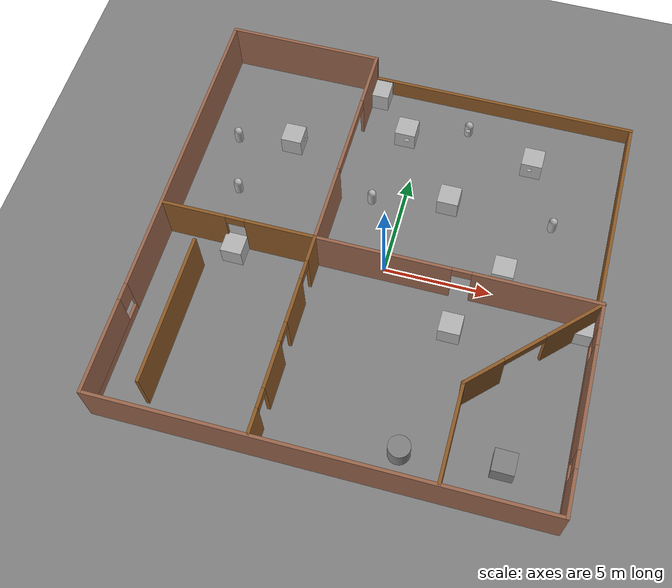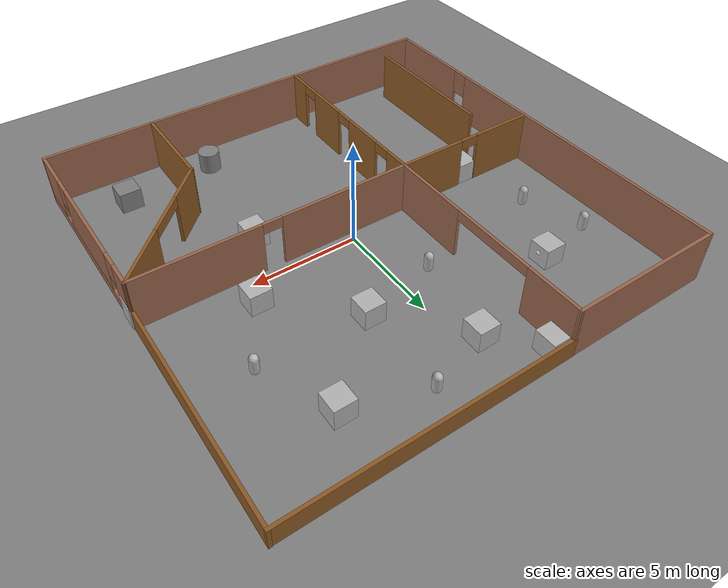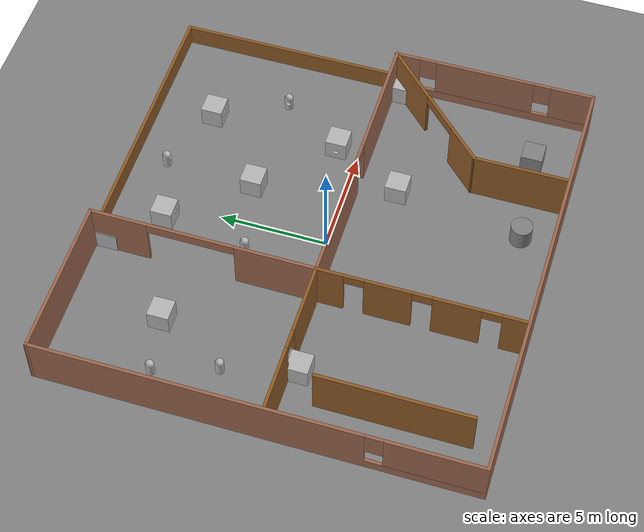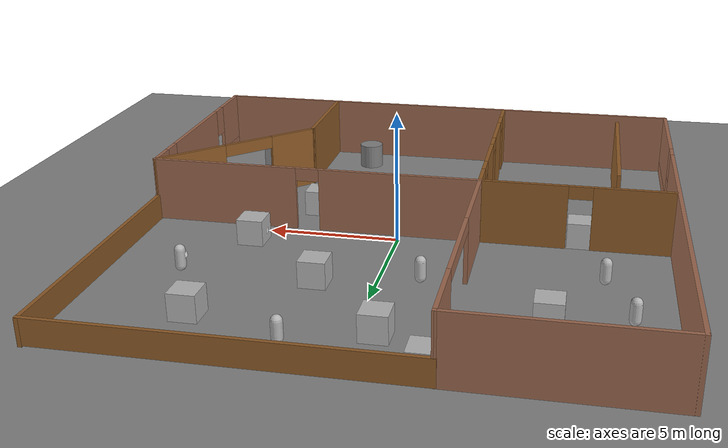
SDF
<sdf version="1.9">
 <world name="default">
  <gravity>0 0 -9.8</gravity>
  <magnetic_field>6e-06 2.3e-05 -4.2e-05</magnetic_field>
  <atmosphere type="adiabatic"/>
  <physics type="ode">
   <max_step_size>0.001</max_step_size>
   <real_time_factor>1</real_time_factor>
   <real_time_update_rate>1000</real_time_update_rate>
  </physics>
  <scene><ambient>0.4 0.4 0.4 1</ambient><background>0.7 0.7 0.7 1</background><shadows>true</shadows></scene>
  <audio><device>default</device></audio>
  <spherical_coordinates>
   <surface_model>EARTH_WGS84</surface_model>
   <latitude_deg>0</latitude_deg>
   <longitude_deg>0</longitude_deg>
   <elevation>0</elevation>
   <heading_deg>0</heading_deg>
  </spherical_coordinates>
  <model name="ground_plane">
   <static>true</static>
   <link name="link">
    <collision name="collision">
     <geometry><plane><normal>0 0 1</normal><size>100 100</size></plane></geometry>
     <surface><friction><ode><mu>100</mu><mu2>50</mu2></ode></friction></surface>
    </collision>
    <visual name="visual">
     <cast_shadows>false</cast_shadows>
     <geometry><plane><normal>0 0 1</normal><size>100 100</size></plane></geometry>
     <material>
      <ambient>0.5 0.5 0.5 1</ambient>
      <diffuse>0.5 0.5 0.5 1</diffuse>
      <specular>0.1 0.1 0.1 1</specular>
     </material>
    </visual>
    <inertial>
     <mass>1</mass>
     <inertia><ixx>1</ixx><ixy>0</ixy><ixz>0</ixz><iyy>1</iyy><iyz>0</iyz><izz>1</izz></inertia>
    </inertial>
   </link>
  </model>
  <model name="test_room">
   <pose>-0.185701 0.02346 0 0 -0 0</pose>
   <link name="Wall_1">
    <pose>-10.0852 -7e-06 0 0 0 -1.5708</pose>
    <visual name="Wall_1_Visual_0">
     <pose>-2.60084 0 1.25 0 -0 0</pose>
     <geometry><box><size>14.8266 0.15 2.5</size></box></geometry>
     <material>
      <ambient>0.6 0.4 0.3 1</ambient>
      <diffuse>0.6 0.4 0.3 1</diffuse>
      <specular>0.1 0.1 0.1 1</specular>
     </material>
     <meta><layer>0</layer></meta>
    </visual>
    <collision name="Wall_1_Collision_0">
     <geometry><box><size>14.8266 0.15 2.5</size></box></geometry>
     <pose>-2.60084 0 1.25 0 -0 0</pose>
    </collision>
    <visual name="Wall_1_Visual_1">
     <pose>7.41331 0 0.25 0 -0 0</pose>
     <geometry><box><size>5.20167 0.15 0.5</size></box></geometry>
     <material>
      <ambient>0.6 0.4 0.3 1</ambient>
      <diffuse>0.6 0.4 0.3 1</diffuse>
      <specular>0.1 0.1 0.1 1</specular>
     </material>
     <meta><layer>0</layer></meta>
    </visual>
    <collision name="Wall_1_Collision_1">
     <geometry><box><size>5.20167 0.15 0.5</size></box></geometry>
     <pose>7.41331 0 0.25 0 -0 0</pose>
    </collision>
    <visual name="Wall_1_Visual_2">
     <pose>7.81331 0 1.5 0 -0 0</pose>
     <geometry><box><size>4.40167 0.15 2</size></box></geometry>
     <material>
      <ambient>0.6 0.4 0.3 1</ambient>
      <diffuse>0.6 0.4 0.3 1</diffuse>
      <specular>0.1 0.1 0.1 1</specular>
     </material>
     <meta><layer>0</layer></meta>
    </visual>
    <collision name="Wall_1_Collision_2">
     <geometry><box><size>4.40167 0.15 2</size></box></geometry>
     <pose>7.81331 0 1.5 0 -0 0</pose>
    </collision>
    <visual name="Wall_1_Visual_3">
     <pose>5.21248 0 1.9 0 -0 0</pose>
     <geometry><box><size>0.8 0.15 1.2</size></box></geometry>
     <material>
      <ambient>0.6 0.4 0.3 1</ambient>
      <diffuse>0.6 0.4 0.3 1</diffuse>
      <specular>0.1 0.1 0.1 1</specular>
     </material>
     <meta><layer>0</layer></meta>
    </visual>
    <collision name="Wall_1_Collision_3">
     <geometry><box><size>0.8 0.15 1.2</size></box></geometry>
     <pose>5.21248 0 1.9 0 -0 0</pose>
    </collision>
    <inertial>
     <mass>1</mass>
     <inertia><ixx>1</ixx><ixy>0</ixy><ixz>0</ixz><iyy>1</iyy><iyz>0</iyz><izz>1</izz></inertia>
    </inertial>
   </link>
   <link name="Wall_10">
    <pose>10.0526 -5.21899 0 0 0 -1.56433</pose>
    <visual name="Wall_10_Visual_0">
     <pose>-4.1681 0 1.25 0 -0 0</pose>
     <geometry><box><size>1.23337 0.15 2.5</size></box></geometry>
     <material>
      <ambient>0.6 0.4 0.3 1</ambient>
      <diffuse>0.6 0.4 0.3 1</diffuse>
      <specular>0.1 0.1 0.1 1</specular>
     </material>
     <meta><layer>0</layer></meta>
    </visual>
    <collision name="Wall_10_Collision_0">
     <geometry><box><size>1.23337 0.15 2.5</size></box></geometry>
     <pose>-4.1681 0 1.25 0 -0 0</pose>
    </collision>
    <visual name="Wall_10_Visual_1">
     <pose>0.616686 0 0.25 0 -0 0</pose>
     <geometry><box><size>8.3362 0.15 0.5</size></box></geometry>
     <material>
      <ambient>0.6 0.4 0.3 1</ambient>
      <diffuse>0.6 0.4 0.3 1</diffuse>
      <specular>0.1 0.1 0.1 1</specular>
     </material>
     <meta><layer>0</layer></meta>
    </visual>
    <collision name="Wall_10_Collision_1">
     <geometry><box><size>8.3362 0.15 0.5</size></box></geometry>
     <pose>0.616686 0 0.25 0 -0 0</pose>
    </collision>
    <visual name="Wall_10_Visual_2">
     <pose>-0.410197 0 1.5 0 -0 0</pose>
     <geometry><box><size>4.68244 0.15 2</size></box></geometry>
     <material>
      <ambient>0.6 0.4 0.3 1</ambient>
      <diffuse>0.6 0.4 0.3 1</diffuse>
      <specular>0.1 0.1 0.1 1</specular>
     </material>
     <meta><layer>0</layer></meta>
    </visual>
    <collision name="Wall_10_Collision_2">
     <geometry><box><size>4.68244 0.15 2</size></box></geometry>
     <pose>-0.410197 0 1.5 0 -0 0</pose>
    </collision>
    <visual name="Wall_10_Visual_3">
     <pose>3.75791 0 1.5 0 -0 0</pose>
     <geometry><box><size>2.05376 0.15 2</size></box></geometry>
     <material>
      <ambient>0.6 0.4 0.3 1</ambient>
      <diffuse>0.6 0.4 0.3 1</diffuse>
      <specular>0.1 0.1 0.1 1</specular>
     </material>
     <meta><layer>0</layer></meta>
    </visual>
    <collision name="Wall_10_Collision_3">
     <geometry><box><size>2.05376 0.15 2</size></box></geometry>
     <pose>3.75791 0 1.5 0 -0 0</pose>
    </collision>
    <visual name="Wall_10_Visual_4">
     <pose>-3.15142 0 1.9 0 -0 0</pose>
     <geometry><box><size>0.8 0.15 1.2</size></box></geometry>
     <material>
      <ambient>0.6 0.4 0.3 1</ambient>
      <diffuse>0.6 0.4 0.3 1</diffuse>
      <specular>0.1 0.1 0.1 1</specular>
     </material>
     <meta><layer>0</layer></meta>
    </visual>
    <collision name="Wall_10_Collision_4">
     <geometry><box><size>0.8 0.15 1.2</size></box></geometry>
     <pose>-3.15142 0 1.9 0 -0 0</pose>
    </collision>
    <visual name="Wall_10_Visual_5">
     <pose>2.33102 0 1.9 0 -0 0</pose>
     <geometry><box><size>0.8 0.15 1.2</size></box></geometry>
     <material>
      <ambient>0.6 0.4 0.3 1</ambient>
      <diffuse>0.6 0.4 0.3 1</diffuse>
      <specular>0.1 0.1 0.1 1</specular>
     </material>
     <meta><layer>0</layer></meta>
    </visual>
    <collision name="Wall_10_Collision_5">
     <geometry><box><size>0.8 0.15 1.2</size></box></geometry>
     <pose>2.33102 0 1.9 0 -0 0</pose>
    </collision>
    <inertial>
     <mass>1</mass>
     <inertia><ixx>1</ixx><ixy>0</ixy><ixz>0</ixz><iyy>1</iyy><iyz>0</iyz><izz>1</izz></inertia>
    </inertial>
   </link>
   <link name="Wall_12">
    <collision name="Wall_12_Collision">
     <geometry><box><size>7.41264 0.15 2.5</size></box></geometry>
     <pose>0 0 1.25 0 -0 0</pose>
    </collision>
    <visual name="Wall_12_Visual">
     <pose>0 0 1.25 0 -0 0</pose>
     <geometry><box><size>7.41264 0.15 2.5</size></box></geometry>
     <material>
      <ambient>0.6 0.4 0.3 1</ambient>
      <diffuse>0.6 0.4 0.3 1</diffuse>
      <specular>0.1 0.1 0.1 1</specular>
     </material>
     <meta><layer>0</layer></meta>
    </visual>
    <pose>-6.45385 9.93841 0 0 0 -0.000203</pose>
    <inertial>
     <mass>1</mass>
     <inertia><ixx>1</ixx><ixy>0</ixy><ixz>0</ixz><iyy>1</iyy><iyz>0</iyz><izz>1</izz></inertia>
    </inertial>
   </link>
   <link name="Wall_16">
    <pose>-6.41315 -0.507168 0 0 -0 3.14159</pose>
    <visual name="Wall_16_Visual_0">
     <pose>-1.94676 0 1.25 0 -0 0</pose>
     <geometry><box><size>3.35648 0.15 2.5</size></box></geometry>
     <material>
      <ambient>0.55 0.35 0.15 1</ambient>
      <diffuse>0.55 0.35 0.15 1</diffuse>
      <specular>0.1 0.1 0.1 1</specular>
     </material>
     <meta><layer>0</layer></meta>
    </visual>
    <collision name="Wall_16_Collision_0">
     <geometry><box><size>3.35648 0.15 2.5</size></box></geometry>
     <pose>-1.94676 0 1.25 0 -0 0</pose>
    </collision>
    <visual name="Wall_16_Visual_1">
     <pose>2.12824 0 1.25 0 -0 0</pose>
     <geometry><box><size>2.99352 0.15 2.5</size></box></geometry>
     <material>
      <ambient>0.55 0.35 0.15 1</ambient>
      <diffuse>0.55 0.35 0.15 1</diffuse>
      <specular>0.1 0.1 0.1 1</specular>
     </material>
     <meta><layer>0</layer></meta>
    </visual>
    <collision name="Wall_16_Collision_1">
     <geometry><box><size>2.99352 0.15 2.5</size></box></geometry>
     <pose>2.12824 0 1.25 0 -0 0</pose>
    </collision>
    <visual name="Wall_16_Visual_2">
     <pose>0.181481 0 2.25 0 -0 0</pose>
     <geometry><box><size>0.9 0.15 0.5</size></box></geometry>
     <material>
      <ambient>0.55 0.35 0.15 1</ambient>
      <diffuse>0.55 0.35 0.15 1</diffuse>
      <specular>0.1 0.1 0.1 1</specular>
     </material>
     <meta><layer>0</layer></meta>
    </visual>
    <collision name="Wall_16_Collision_2">
     <geometry><box><size>0.9 0.15 0.5</size></box></geometry>
     <pose>0.181481 0 2.25 0 -0 0</pose>
    </collision>
    <inertial>
     <mass>1</mass>
     <inertia><ixx>1</ixx><ixy>0</ixy><ixz>0</ixz><iyy>1</iyy><iyz>0</iyz><izz>1</izz></inertia>
    </inertial>
   </link>
   <link name="Wall_18">
    <pose>-2.86315 -5.18217 0 0 0 -1.5708</pose>
    <visual name="Wall_18_Visual_0">
     <pose>-4.08833 0 1.25 0 -0 0</pose>
     <geometry><box><size>1.32334 0.15 2.5</size></box></geometry>
     <material>
      <ambient>0.55 0.35 0.15 1</ambient>
      <diffuse>0.55 0.35 0.15 1</diffuse>
      <specular>0.1 0.1 0.1 1</specular>
     </material>
     <meta><layer>0</layer></meta>
    </visual>
    <collision name="Wall_18_Collision_0">
     <geometry><box><size>1.32334 0.15 2.5</size></box></geometry>
     <pose>-4.08833 0 1.25 0 -0 0</pose>
    </collision>
    <visual name="Wall_18_Visual_1">
     <pose>-1.45004 0 1.25 0 -0 0</pose>
     <geometry><box><size>2.15324 0.15 2.5</size></box></geometry>
     <material>
      <ambient>0.55 0.35 0.15 1</ambient>
      <diffuse>0.55 0.35 0.15 1</diffuse>
      <specular>0.1 0.1 0.1 1</specular>
     </material>
     <meta><layer>0</layer></meta>
    </visual>
    <collision name="Wall_18_Collision_1">
     <geometry><box><size>2.15324 0.15 2.5</size></box></geometry>
     <pose>-1.45004 0 1.25 0 -0 0</pose>
    </collision>
    <visual name="Wall_18_Visual_2">
     <pose>1.60632 0 1.25 0 -0 0</pose>
     <geometry><box><size>2.15948 0.15 2.5</size></box></geometry>
     <material>
      <ambient>0.55 0.35 0.15 1</ambient>
      <diffuse>0.55 0.35 0.15 1</diffuse>
      <specular>0.1 0.1 0.1 1</specular>
     </material>
     <meta><layer>0</layer></meta>
    </visual>
    <collision name="Wall_18_Collision_2">
     <geometry><box><size>2.15948 0.15 2.5</size></box></geometry>
     <pose>1.60632 0 1.25 0 -0 0</pose>
    </collision>
    <visual name="Wall_18_Visual_3">
     <pose>4.16803 0 1.25 0 -0 0</pose>
     <geometry><box><size>1.16395 0.15 2.5</size></box></geometry>
     <material>
      <ambient>0.55 0.35 0.15 1</ambient>
      <diffuse>0.55 0.35 0.15 1</diffuse>
      <specular>0.1 0.1 0.1 1</specular>
     </material>
     <meta><layer>0</layer></meta>
    </visual>
    <collision name="Wall_18_Collision_3">
     <geometry><box><size>1.16395 0.15 2.5</size></box></geometry>
     <pose>4.16803 0 1.25 0 -0 0</pose>
    </collision>
    <visual name="Wall_18_Visual_4">
     <pose>-2.97666 0 2.25 0 -0 0</pose>
     <geometry><box><size>0.9 0.15 0.5</size></box></geometry>
     <material>
      <ambient>0.55 0.35 0.15 1</ambient>
      <diffuse>0.55 0.35 0.15 1</diffuse>
      <specular>0.1 0.1 0.1 1</specular>
     </material>
     <meta><layer>0</layer></meta>
    </visual>
    <collision name="Wall_18_Collision_4">
     <geometry><box><size>0.9 0.15 0.5</size></box></geometry>
     <pose>-2.97666 0 2.25 0 -0 0</pose>
    </collision>
    <visual name="Wall_18_Visual_5">
     <pose>0.076577 0 2.25 0 -0 0</pose>
     <geometry><box><size>0.9 0.15 0.5</size></box></geometry>
     <material>
      <ambient>0.55 0.35 0.15 1</ambient>
      <diffuse>0.55 0.35 0.15 1</diffuse>
      <specular>0.1 0.1 0.1 1</specular>
     </material>
     <meta><layer>0</layer></meta>
    </visual>
    <collision name="Wall_18_Collision_5">
     <geometry><box><size>0.9 0.15 0.5</size></box></geometry>
     <pose>0.076577 0 2.25 0 -0 0</pose>
    </collision>
    <visual name="Wall_18_Visual_6">
     <pose>3.13605 0 2.25 0 -0 0</pose>
     <geometry><box><size>0.9 0.15 0.5</size></box></geometry>
     <material>
      <ambient>0.55 0.35 0.15 1</ambient>
      <diffuse>0.55 0.35 0.15 1</diffuse>
      <specular>0.1 0.1 0.1 1</specular>
     </material>
     <meta><layer>0</layer></meta>
    </visual>
    <collision name="Wall_18_Collision_6">
     <geometry><box><size>0.9 0.15 0.5</size></box></geometry>
     <pose>3.13605 0 2.25 0 -0 0</pose>
    </collision>
    <inertial>
     <mass>1</mass>
     <inertia><ixx>1</ixx><ixy>0</ixy><ixz>0</ixz><iyy>1</iyy><iyz>0</iyz><izz>1</izz></inertia>
    </inertial>
   </link>
   <link name="Wall_20">
    <collision name="Wall_20_Collision">
     <geometry><box><size>7 0.15 2.5</size></box></geometry>
     <pose>0 0 1.25 0 -0 0</pose>
    </collision>
    <visual name="Wall_20_Visual">
     <pose>0 0 1.25 0 -0 0</pose>
     <geometry><box><size>7 0.15 2.5</size></box></geometry>
     <material>
      <ambient>0.55 0.35 0.15 1</ambient>
      <diffuse>0.55 0.35 0.15 1</diffuse>
      <specular>0.1 0.1 0.1 1</specular>
     </material>
     <meta><layer>0</layer></meta>
    </visual>
    <pose>-7.96917 -5.44423 0 0 0 -1.5708</pose>
    <inertial>
     <mass>1</mass>
     <inertia><ixx>1</ixx><ixy>0</ixy><ixz>0</ixz><iyy>1</iyy><iyz>0</iyz><izz>1</izz></inertia>
    </inertial>
   </link>
   <link name="Wall_22">
    <pose>7.51188 -3.01953 0 0 -0 -2.35619</pose>
    <visual name="Wall_22_Visual_0">
     <pose>-2.09265 0 1.25 0 -0 0</pose>
     <geometry><box><size>3.06471 0.15 2.5</size></box></geometry>
     <material>
      <ambient>0.55 0.35 0.15 1</ambient>
      <diffuse>0.55 0.35 0.15 1</diffuse>
      <specular>0.1 0.1 0.1 1</specular>
     </material>
     <meta><layer>0</layer></meta>
    </visual>
    <collision name="Wall_22_Collision_0">
     <geometry><box><size>3.06471 0.15 2.5</size></box></geometry>
     <pose>-2.09265 0 1.25 0 -0 0</pose>
    </collision>
    <visual name="Wall_22_Visual_1">
     <pose>2.58752 0 1.25 0 -0 0</pose>
     <geometry><box><size>2.07496 0.15 2.5</size></box></geometry>
     <material>
      <ambient>0.55 0.35 0.15 1</ambient>
      <diffuse>0.55 0.35 0.15 1</diffuse>
      <specular>0.1 0.1 0.1 1</specular>
     </material>
     <meta><layer>0</layer></meta>
    </visual>
    <collision name="Wall_22_Collision_1">
     <geometry><box><size>2.07496 0.15 2.5</size></box></geometry>
     <pose>2.58752 0 1.25 0 -0 0</pose>
    </collision>
    <visual name="Wall_22_Visual_2">
     <pose>0.494874 0 2.25 0 -0 0</pose>
     <geometry><box><size>2.11033 0.15 0.5</size></box></geometry>
     <material>
      <ambient>0.55 0.35 0.15 1</ambient>
      <diffuse>0.55 0.35 0.15 1</diffuse>
      <specular>0.1 0.1 0.1 1</specular>
     </material>
     <meta><layer>0</layer></meta>
    </visual>
    <collision name="Wall_22_Collision_2">
     <geometry><box><size>2.11033 0.15 0.5</size></box></geometry>
     <pose>0.494874 0 2.25 0 -0 0</pose>
    </collision>
    <inertial>
     <mass>1</mass>
     <inertia><ixx>1</ixx><ixy>0</ixy><ixz>0</ixz><iyy>1</iyy><iyz>0</iyz><izz>1</izz></inertia>
    </inertial>
   </link>
   <link name="Wall_23">
    <collision name="Wall_23_Collision">
     <geometry><box><size>4.5 0.15 2.5</size></box></geometry>
     <pose>0 0 1.25 0 -0 0</pose>
    </collision>
    <visual name="Wall_23_Visual">
     <pose>0 0 1.25 0 -0 0</pose>
     <geometry><box><size>4.5 0.15 2.5</size></box></geometry>
     <material>
      <ambient>0.55 0.35 0.15 1</ambient>
      <diffuse>0.55 0.35 0.15 1</diffuse>
      <specular>0.1 0.1 0.1 1</specular>
     </material>
     <meta><layer>0</layer></meta>
    </visual>
    <pose>5.00165 -7.70476 0 0 0 -1.5708</pose>
    <inertial>
     <mass>1</mass>
     <inertia><ixx>1</ixx><ixy>0</ixy><ixz>0</ixz><iyy>1</iyy><iyz>0</iyz><izz>1</izz></inertia>
    </inertial>
   </link>
   <link name="Wall_3">
    <collision name="Wall_3_Collision">
     <geometry><box><size>20.3204 0.15 2.5</size></box></geometry>
     <pose>0 0 1.25 0 -0 0</pose>
    </collision>
    <visual name="Wall_3_Visual">
     <pose>0 0 1.25 0 -0 0</pose>
     <geometry><box><size>20.3204 0.15 2.5</size></box></geometry>
     <material>
      <ambient>0.6 0.4 0.3 1</ambient>
      <diffuse>0.6 0.4 0.3 1</diffuse>
      <specular>0.1 0.1 0.1 1</specular>
     </material>
     <meta><layer>0</layer></meta>
    </visual>
    <pose>8e-06 -9.93916 0 0 -0 0</pose>
    <inertial>
     <mass>1</mass>
     <inertia><ixx>1</ixx><ixy>0</ixy><ixz>0</ixz><iyy>1</iyy><iyz>0</iyz><izz>1</izz></inertia>
    </inertial>
   </link>
   <link name="Wall_7">
    <pose>-2.84231 4.71525 0 0 0 -1.57458</pose>
    <visual name="Wall_7_Visual_0">
     <pose>-3.92845 0 1.25 0 -0 0</pose>
     <geometry><box><size>2.73806 0.15 2.5</size></box></geometry>
     <material>
      <ambient>0.6 0.4 0.3 1</ambient>
      <diffuse>0.6 0.4 0.3 1</diffuse>
      <specular>0.1 0.1 0.1 1</specular>
     </material>
     <meta><layer>0</layer></meta>
    </visual>
    <collision name="Wall_7_Collision_0">
     <geometry><box><size>2.73806 0.15 2.5</size></box></geometry>
     <pose>-3.92845 0 1.25 0 -0 0</pose>
    </collision>
    <visual name="Wall_7_Visual_1">
     <pose>3.38844 0 1.25 0 -0 0</pose>
     <geometry><box><size>3.81807 0.15 2.5</size></box></geometry>
     <material>
      <ambient>0.6 0.4 0.3 1</ambient>
      <diffuse>0.6 0.4 0.3 1</diffuse>
      <specular>0.1 0.1 0.1 1</specular>
     </material>
     <meta><layer>0</layer></meta>
    </visual>
    <collision name="Wall_7_Collision_1">
     <geometry><box><size>3.81807 0.15 2.5</size></box></geometry>
     <pose>3.38844 0 1.25 0 -0 0</pose>
    </collision>
    <visual name="Wall_7_Visual_2">
     <pose>-0.540004 0 2.25 0 -0 0</pose>
     <geometry><box><size>4.03882 0.15 0.5</size></box></geometry>
     <material>
      <ambient>0.6 0.4 0.3 1</ambient>
      <diffuse>0.6 0.4 0.3 1</diffuse>
      <specular>0.1 0.1 0.1 1</specular>
     </material>
     <meta><layer>0</layer></meta>
    </visual>
    <collision name="Wall_7_Collision_2">
     <geometry><box><size>4.03882 0.15 0.5</size></box></geometry>
     <pose>-0.540004 0 2.25 0 -0 0</pose>
    </collision>
    <inertial>
     <mass>1</mass>
     <inertia><ixx>1</ixx><ixy>0</ixy><ixz>0</ixz><iyy>1</iyy><iyz>0</iyz><izz>1</izz></inertia>
    </inertial>
   </link>
   <link name="Wall_8">
    <pose>3.58001 -0.508237 0 0 0 -0.000166</pose>
    <visual name="Wall_8_Visual_0">
     <pose>-3.36964 0 1.25 0 -0 0</pose>
     <geometry><box><size>6.29492 0.15 2.5</size></box></geometry>
     <material>
      <ambient>0.6 0.4 0.3 1</ambient>
      <diffuse>0.6 0.4 0.3 1</diffuse>
      <specular>0.1 0.1 0.1 1</specular>
     </material>
     <meta><layer>0</layer></meta>
    </visual>
    <collision name="Wall_8_Collision_0">
     <geometry><box><size>6.29492 0.15 2.5</size></box></geometry>
     <pose>-3.36964 0 1.25 0 -0 0</pose>
    </collision>
    <visual name="Wall_8_Visual_1">
     <pose>3.59746 0 1.25 0 -0 0</pose>
     <geometry><box><size>5.83927 0.15 2.5</size></box></geometry>
     <material>
      <ambient>0.6 0.4 0.3 1</ambient>
      <diffuse>0.6 0.4 0.3 1</diffuse>
      <specular>0.1 0.1 0.1 1</specular>
     </material>
     <meta><layer>0</layer></meta>
    </visual>
    <collision name="Wall_8_Collision_1">
     <geometry><box><size>5.83927 0.15 2.5</size></box></geometry>
     <pose>3.59746 0 1.25 0 -0 0</pose>
    </collision>
    <visual name="Wall_8_Visual_2">
     <pose>0.227824 0 2.25 0 -0 0</pose>
     <geometry><box><size>0.9 0.15 0.5</size></box></geometry>
     <material>
      <ambient>0.6 0.4 0.3 1</ambient>
      <diffuse>0.6 0.4 0.3 1</diffuse>
      <specular>0.1 0.1 0.1 1</specular>
     </material>
     <meta><layer>0</layer></meta>
    </visual>
    <collision name="Wall_8_Collision_2">
     <geometry><box><size>0.9 0.15 0.5</size></box></geometry>
     <pose>0.227824 0 2.25 0 -0 0</pose>
    </collision>
    <inertial>
     <mass>1</mass>
     <inertia><ixx>1</ixx><ixy>0</ixy><ixz>0</ixz><iyy>1</iyy><iyz>0</iyz><izz>1</izz></inertia>
    </inertial>
   </link>
   <static>true</static>
  </model>
  <model name="wooden_fence">
   <link name="Wall_14">
    <pose>6.425 0 -0.775596 0 -0 1.5708</pose>
    <inertial>
     <inertia><ixx>0</ixx><ixy>0</ixy><ixz>0</ixz><iyy>0</iyy><iyz>0</iyz><izz>0</izz></inertia>
     <mass>0</mass>
    </inertial>
    <visual name="Wall_14_Visual">
     <pose>0 0 1.25 0 -0 0</pose>
     <geometry><box><size>10.5 0.15 1.0201</size></box></geometry>
     <material>
      <ambient>0.55 0.35 0.15 1</ambient>
      <diffuse>0.55 0.35 0.15 1</diffuse>
      <shader type="pixel"/>
     </material>
     <meta><layer>0</layer></meta>
    </visual>
    <collision name="Wall_14_Collision">
     <pose>0 0 1.25 0 -0 0</pose>
     <geometry><box><size>10.5 0.15 1.0201</size></box></geometry>
     <surface>
      <friction>
       <ode><mu>1</mu><mu2>1</mu2><fdir1>0 0 0</fdir1><slip1>0</slip1><slip2>0</slip2></ode>
       <torsional>
        <coefficient>1</coefficient>
        <patch_radius>0</patch_radius>
        <surface_radius>0</surface_radius>
        <use_patch_radius>true</use_patch_radius>
        <ode><slip>0</slip></ode>
       </torsional>
      </friction>
      <bounce><restitution_coefficient>0</restitution_coefficient><threshold>1000000</threshold></bounce>
      <contact>
       <collide_without_contact>false</collide_without_contact>
       <collide_without_contact_bitmask>1</collide_without_contact_bitmask>
       <collide_bitmask>1</collide_bitmask>
       <ode>
        <soft_cfm>0</soft_cfm>
        <soft_erp>0.20000000000000001</soft_erp>
        <kp>10000000000000</kp>
        <kd>1</kd>
        <max_vel>0.01</max_vel>
        <min_depth>0</min_depth>
       </ode>
       <bullet>
        <split_impulse>true</split_impulse>
        <split_impulse_penetration_threshold>-0.01</split_impulse_penetration_threshold>
        <soft_cfm>0</soft_cfm>
        <soft_erp>0.20000000000000001</soft_erp>
        <kp>10000000000000</kp>
        <kd>1</kd>
       </bullet>
      </contact>
     </surface>
    </collision>
   </link>
   <link name="Wall_16">
    <pose>0 5.175 -0.744158 0 -0 3.14159</pose>
    <inertial>
     <inertia><ixx>0</ixx><ixy>0</ixy><ixz>0</ixz><iyy>0</iyy><iyz>0</iyz><izz>0</izz></inertia>
     <mass>0</mass>
    </inertial>
    <visual name="Wall_16_Visual">
     <pose>0 0 1.25 0 -0 0</pose>
     <geometry><box><size>13 0.15 0.970964</size></box></geometry>
     <material>
      <ambient>0.55 0.35 0.15 1</ambient>
      <diffuse>0.55 0.35 0.15 1</diffuse>
      <shader type="pixel"/>
     </material>
     <meta><layer>0</layer></meta>
    </visual>
    <collision name="Wall_16_Collision">
     <pose>0 0 1.25 0 -0 0</pose>
     <geometry><box><size>13 0.15 0.970964</size></box></geometry>
     <surface>
      <friction>
       <ode><mu>1</mu><mu2>1</mu2><fdir1>0 0 0</fdir1><slip1>0</slip1><slip2>0</slip2></ode>
       <torsional>
        <coefficient>1</coefficient>
        <patch_radius>0</patch_radius>
        <surface_radius>0</surface_radius>
        <use_patch_radius>true</use_patch_radius>
        <ode><slip>0</slip></ode>
       </torsional>
      </friction>
      <bounce><restitution_coefficient>0</restitution_coefficient><threshold>1000000</threshold></bounce>
      <contact>
       <collide_without_contact>false</collide_without_contact>
       <collide_without_contact_bitmask>1</collide_without_contact_bitmask>
       <collide_bitmask>1</collide_bitmask>
       <ode>
        <soft_cfm>0</soft_cfm>
        <soft_erp>0.20000000000000001</soft_erp>
        <kp>10000000000000</kp>
        <kd>1</kd>
        <max_vel>0.01</max_vel>
        <min_depth>0</min_depth>
       </ode>
       <bullet>
        <split_impulse>true</split_impulse>
        <split_impulse_penetration_threshold>-0.01</split_impulse_penetration_threshold>
        <soft_cfm>0</soft_cfm>
        <soft_erp>0.20000000000000001</soft_erp>
        <kp>10000000000000</kp>
        <kd>1</kd>
       </bullet>
      </contact>
     </surface>
    </collision>
   </link>
   <static>true</static>
   <pose>3.4044 4.80916 0 0 -0 0</pose>
  </model>
  <model name="unit_box">
   <pose>7.18094 -7.86108 0.5 0 -0 0</pose>
   <link name="link">
    <inertial>
     <mass>1</mass>
     <inertia>
      <ixx>0.16666700000000001</ixx>
      <ixy>0</ixy>
      <ixz>0</ixz>
      <iyy>0.16666700000000001</iyy>
      <iyz>0</iyz>
      <izz>0.16666700000000001</izz>
     </inertia>
    </inertial>
    <collision name="collision"><geometry><box><size>1 1 1</size></box></geometry></collision>
    <visual name="visual">
     <geometry><box><size>1 1 1</size></box></geometry>
     <material>
      <ambient>0.5 0.5 0.5 1</ambient>
      <diffuse>0.5 0.5 0.5 1</diffuse>
      <specular>0.1 0.1 0.1 1</specular>
     </material>
    </visual>
   </link>
   <static>false</static>
  </model>
  <model name="unit_cylinder">
   <pose>2.83688 -8.3326 0.5 0 -0 0</pose>
   <link name="link">
    <inertial>
     <mass>1</mass>
     <inertia>
      <ixx>0.14583299999999999</ixx>
      <ixy>0</ixy>
      <ixz>0</ixz>
      <iyy>0.14583299999999999</iyy>
      <iyz>0</iyz>
      <izz>0.125</izz>
     </inertia>
    </inertial>
    <collision name="collision">
     <geometry><cylinder><radius>0.5</radius><length>1</length></cylinder></geometry>
    </collision>
    <visual name="visual">
     <geometry><cylinder><radius>0.5</radius><length>1</length></cylinder></geometry>
     <material>
      <ambient>0.5 0.5 0.5 1</ambient>
      <diffuse>0.5 0.5 0.5 1</diffuse>
      <specular>0.1 0.1 0.1 1</specular>
     </material>
    </visual>
   </link>
   <static>false</static>
  </model>
  <model name="box">
   <pose>-2.62559 9.36348 0.5 0 0 -0</pose>
   <link name="box_link">
    <inertial>
     <inertia><ixx>0.16666</ixx><ixy>0</ixy><ixz>0</ixz><iyy>0.16666</iyy><iyz>0</iyz><izz>0.16666</izz></inertia>
     <mass>1</mass>
    </inertial>
    <collision name="box_collision"><geometry><box><size>1 1 1</size></box></geometry></collision>
    <visual name="box_visual">
     <geometry><box><size>1 1 1</size></box></geometry>
     <material>
      <ambient>0.3 0.3 0.3 1</ambient>
      <diffuse>0.7 0.7 0.7 1</diffuse>
      <specular>1 1 1 1</specular>
     </material>
    </visual>
   </link>
   <static>false</static>
  </model>
  <model name="box_0">
   <pose>9.46219 -0.940838 0.5 0 -0 -6e-06</pose>
   <link name="box_link">
    <inertial>
     <inertia><ixx>0.16666</ixx><ixy>0</ixy><ixz>0</ixz><iyy>0.16666</iyy><iyz>0</iyz><izz>0.16666</izz></inertia>
     <mass>1</mass>
    </inertial>
    <collision name="box_collision"><geometry><box><size>1 1 1</size></box></geometry></collision>
    <visual name="box_visual">
     <geometry><box><size>1 1 1</size></box></geometry>
     <material>
      <ambient>0.3 0.3 0.3 1</ambient>
      <diffuse>0.7 0.7 0.7 1</diffuse>
      <specular>1 1 1 1</specular>
     </material>
    </visual>
   </link>
   <static>false</static>
  </model>
  <model name="box_1">
   <pose>3.65113 -2.32239 0.5 0 0 -0</pose>
   <link name="box_link">
    <inertial>
     <inertia><ixx>0.16666</ixx><ixy>0</ixy><ixz>0</ixz><iyy>0.16666</iyy><iyz>0</iyz><izz>0.16666</izz></inertia>
     <mass>1</mass>
    </inertial>
    <collision name="box_collision"><geometry><box><size>1 1 1</size></box></geometry></collision>
    <visual name="box_visual">
     <geometry><box><size>1 1 1</size></box></geometry>
     <material>
      <ambient>0.3 0.3 0.3 1</ambient>
      <diffuse>0.7 0.7 0.7 1</diffuse>
      <specular>1 1 1 1</specular>
     </material>
    </visual>
   </link>
   <static>false</static>
  </model>
  <model name="box_2">
   <pose>-6.86546 -0.942627 0.5 0 0 -0</pose>
   <link name="box_link">
    <inertial>
     <inertia><ixx>0.16666</ixx><ixy>0</ixy><ixz>0</ixz><iyy>0.16666</iyy><iyz>0</iyz><izz>0.16666</izz></inertia>
     <mass>1</mass>
    </inertial>
    <collision name="box_collision"><geometry><box><size>1 1 1</size></box></geometry></collision>
    <visual name="box_visual">
     <geometry><box><size>1 1 1</size></box></geometry>
     <material>
      <ambient>0.3 0.3 0.3 1</ambient>
      <diffuse>0.7 0.7 0.7 1</diffuse>
      <specular>1 1 1 1</specular>
     </material>
    </visual>
   </link>
   <static>false</static>
  </model>
  <model name="box_3">
   <pose>-6.03228 5.64656 0.5 0 0 -0</pose>
   <link name="box_link">
    <inertial>
     <inertia><ixx>0.16666</ixx><ixy>0</ixy><ixz>0</ixz><iyy>0.16666</iyy><iyz>0</iyz><izz>0.16666</izz></inertia>
     <mass>1</mass>
    </inertial>
    <collision name="box_collision"><geometry><box><size>1 1 1</size></box></geometry></collision>
    <visual name="box_visual">
     <geometry><box><size>1 1 1</size></box></geometry>
     <material>
      <ambient>0.3 0.3 0.3 1</ambient>
      <diffuse>0.7 0.7 0.7 1</diffuse>
      <specular>1 1 1 1</specular>
     </material>
    </visual>
   </link>
   <static>false</static>
  </model>
  <model name="box_4">
   <pose>5.5223 7.21539 0.5 0 0 -0</pose>
   <link name="box_link">
    <inertial>
     <inertia><ixx>0.16666</ixx><ixy>0</ixy><ixz>0</ixz><iyy>0.16666</iyy><iyz>0</iyz><izz>0.16666</izz></inertia>
     <mass>1</mass>
    </inertial>
    <collision name="box_collision"><geometry><box><size>1 1 1</size></box></geometry></collision>
    <visual name="box_visual">
     <geometry><box><size>1 1 1</size></box></geometry>
     <material>
      <ambient>0.3 0.3 0.3 1</ambient>
      <diffuse>0.7 0.7 0.7 1</diffuse>
      <specular>1 1 1 1</specular>
     </material>
    </visual>
   </link>
   <static>false</static>
  </model>
  <model name="box_5">
   <pose>2.09739 4.13035 0.5 0 0 -0</pose>
   <link name="box_link">
    <inertial>
     <inertia><ixx>0.16666</ixx><ixy>0</ixy><ixz>0</ixz><iyy>0.16666</iyy><iyz>0</iyz><izz>0.16666</izz></inertia>
     <mass>1</mass>
    </inertial>
    <collision name="box_collision"><geometry><box><size>1 1 1</size></box></geometry></collision>
    <visual name="box_visual">
     <geometry><box><size>1 1 1</size></box></geometry>
     <material>
      <ambient>0.3 0.3 0.3 1</ambient>
      <diffuse>0.7 0.7 0.7 1</diffuse>
      <specular>1 1 1 1</specular>
     </material>
    </visual>
   </link>
   <static>false</static>
  </model>
  <model name="box_6">
   <pose>5.36196 1.03752 0.5 0 0 -0</pose>
   <link name="box_link">
    <inertial>
     <inertia><ixx>0.16666</ixx><ixy>0</ixy><ixz>0</ixz><iyy>0.16666</iyy><iyz>0</iyz><izz>0.16666</izz></inertia>
     <mass>1</mass>
    </inertial>
    <collision name="box_collision"><geometry><box><size>1 1 1</size></box></geometry></collision>
    <visual name="box_visual">
     <geometry><box><size>1 1 1</size></box></geometry>
     <material>
      <ambient>0.3 0.3 0.3 1</ambient>
      <diffuse>0.7 0.7 0.7 1</diffuse>
      <specular>1 1 1 1</specular>
     </material>
    </visual>
   </link>
   <static>false</static>
  </model>
  <model name="box_7">
   <pose>-0.784633 7.43059 0.5 0 0 -0</pose>
   <link name="box_link">
    <inertial>
     <inertia><ixx>0.16666</ixx><ixy>0</ixy><ixz>0</ixz><iyy>0.16666</iyy><iyz>0</iyz><izz>0.16666</izz></inertia>
     <mass>1</mass>
    </inertial>
    <collision name="box_collision"><geometry><box><size>1 1 1</size></box></geometry></collision>
    <visual name="box_visual">
     <geometry><box><size>1 1 1</size></box></geometry>
     <material>
      <ambient>0.3 0.3 0.3 1</ambient>
      <diffuse>0.7 0.7 0.7 1</diffuse>
      <specular>1 1 1 1</specular>
     </material>
    </visual>
   </link>
   <static>false</static>
  </model>
  <model name="capsule">
   <pose>-1.48562 3.37424 0.5 0 -0 0</pose>
   <link name="capsule_link">
    <inertial>
     <inertia>
      <ixx>0.074153999999999998</ixx>
      <ixy>0</ixy>
      <ixz>0</ixz>
      <iyy>0.074153999999999998</iyy>
      <iyz>0</iyz>
      <izz>0.018769000000000001</izz>
     </inertia>
     <mass>1</mass>
    </inertial>
    <collision name="capsule_collision">
     <geometry>
      <capsule><radius>0.20000000000000001</radius><length>0.59999999999999998</length></capsule>
     </geometry>
    </collision>
    <visual name="capsule_visual">
     <geometry>
      <capsule><radius>0.20000000000000001</radius><length>0.59999999999999998</length></capsule>
     </geometry>
     <material>
      <ambient>0.3 0.3 0.3 1</ambient>
      <diffuse>0.7 0.7 0.7 1</diffuse>
      <specular>1 1 1 1</specular>
     </material>
    </visual>
   </link>
   <static>false</static>
  </model>
  <model name="capsule_0">
   <pose>7.07747 4.02448 0.5 0 -0 0</pose>
   <link name="capsule_link">
    <inertial>
     <inertia>
      <ixx>0.074153999999999998</ixx>
      <ixy>0</ixy>
      <ixz>0</ixz>
      <iyy>0.074153999999999998</iyy>
      <iyz>0</iyz>
      <izz>0.018769000000000001</izz>
     </inertia>
     <mass>1</mass>
    </inertial>
    <collision name="capsule_collision">
     <geometry>
      <capsule><radius>0.20000000000000001</radius><length>0.59999999999999998</length></capsule>
     </geometry>
    </collision>
    <visual name="capsule_visual">
     <geometry>
      <capsule><radius>0.20000000000000001</radius><length>0.59999999999999998</length></capsule>
     </geometry>
     <material>
      <ambient>0.3 0.3 0.3 1</ambient>
      <diffuse>0.7 0.7 0.7 1</diffuse>
      <specular>1 1 1 1</specular>
     </material>
    </visual>
   </link>
   <static>false</static>
  </model>
  <model name="capsule_1">
   <pose>2.11667 8.39699 0.5 0 -0 0</pose>
   <link name="capsule_link">
    <inertial>
     <inertia>
      <ixx>0.074153999999999998</ixx>
      <ixy>0</ixy>
      <ixz>0</ixz>
      <iyy>0.074153999999999998</iyy>
      <iyz>0</iyz>
      <izz>0.018769000000000001</izz>
     </inertia>
     <mass>1</mass>
    </inertial>
    <collision name="capsule_collision">
     <geometry>
      <capsule><radius>0.20000000000000001</radius><length>0.59999999999999998</length></capsule>
     </geometry>
    </collision>
    <visual name="capsule_visual">
     <geometry>
      <capsule><radius>0.20000000000000001</radius><length>0.59999999999999998</length></capsule>
     </geometry>
     <material>
      <ambient>0.3 0.3 0.3 1</ambient>
      <diffuse>0.7 0.7 0.7 1</diffuse>
      <specular>1 1 1 1</specular>
     </material>
    </visual>
   </link>
   <static>false</static>
  </model>
  <model name="capsule_2">
   <pose>-7.80814 2.35558 0.5 0 -0 0</pose>
   <link name="capsule_link">
    <inertial>
     <inertia>
      <ixx>0.074153999999999998</ixx>
      <ixy>0</ixy>
      <ixz>0</ixz>
      <iyy>0.074153999999999998</iyy>
      <iyz>0</iyz>
      <izz>0.018769000000000001</izz>
     </inertia>
     <mass>1</mass>
    </inertial>
    <collision name="capsule_collision">
     <geometry>
      <capsule><radius>0.20000000000000001</radius><length>0.59999999999999998</length></capsule>
     </geometry>
    </collision>
    <visual name="capsule_visual">
     <geometry>
      <capsule><radius>0.20000000000000001</radius><length>0.59999999999999998</length></capsule>
     </geometry>
     <material>
      <ambient>0.3 0.3 0.3 1</ambient>
      <diffuse>0.7 0.7 0.7 1</diffuse>
      <specular>1 1 1 1</specular>
     </material>
    </visual>
   </link>
   <static>false</static>
  </model>
  <model name="capsule_3">
   <pose>-8.74039 5.17665 0.5 0 -0 0</pose>
   <link name="capsule_link">
    <inertial>
     <inertia>
      <ixx>0.074153999999999998</ixx>
      <ixy>0</ixy>
      <ixz>0</ixz>
      <iyy>0.074153999999999998</iyy>
      <iyz>0</iyz>
      <izz>0.018769000000000001</izz>
     </inertia>
     <mass>1</mass>
    </inertial>
    <collision name="capsule_collision">
     <geometry>
      <capsule><radius>0.20000000000000001</radius><length>0.59999999999999998</length></capsule>
     </geometry>
    </collision>
    <visual name="capsule_visual">
     <geometry>
      <capsule><radius>0.20000000000000001</radius><length>0.59999999999999998</length></capsule>
     </geometry>
     <material>
      <ambient>0.3 0.3 0.3 1</ambient>
      <diffuse>0.7 0.7 0.7 1</diffuse>
      <specular>1 1 1 1</specular>
     </material>
    </visual>
   </link>
   <static>false</static>
  </model>
  <light name="sun" type="directional">
   <pose>0 0 10 0 -0 0</pose>
   <intensity>1</intensity>
   <direction>-0.5 0.1 -0.9</direction>
   <diffuse>0.8 0.8 0.8 1</diffuse>
   <specular>0.2 0.2 0.2 1</specular>
   <attenuation>
    <range>1000</range>
    <linear>0.01</linear>
    <constant>0.90000000000000002</constant>
    <quadratic>0.001</quadratic>
   </attenuation>
   <spot><inner_angle>0</inner_angle><outer_angle>0</outer_angle><falloff>0</falloff></spot>
  </light>
  <include>
   <uri>model://apriltag_0</uri>
   <name>apriltag_0</name>
   <pose>5.4519 6.6937 0.6459 1.5708 0 0</pose>
  </include>
  <include>
   <uri>model://apriltag_1</uri>
   <name>apriltag_1</name>
   <pose>-0.6643 6.9295 0.6004 1.5708 0 0</pose>
  </include>
  <include>
   <uri>model://apriltag_2</uri>
   <name>apriltag_2</name>
   <pose>6.8696 3.9796 0.5969 1.5708 0 -1.6209</pose>
  </include>
  <include>
   <uri>model://apriltag_3</uri>
   <name>apriltag_3</name>
   <pose>2.1200 8.1951 0.6459 1.5708 0 0</pose>
  </include>
  <include>
   <uri>model://apriltag_4</uri>
   <name>apriltag_4</name>
   <pose>-5.5209 5.6403 0.6459 1.5708 0 1.5342</pose>
  </include>
  <include>
   <uri>model://apriltag_5</uri>
   <name>apriltag_5</name>
   <pose>4.8362 1.0065 0.4414 1.5708 0 -1.5708</pose>
  </include>
 </world>
</sdf>

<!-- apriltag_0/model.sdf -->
<sdf version="1.6">

  <model name="apriltag_0">

    <static>true</static>

    <link name="tag_link">

      <visual name="tag_visual">

        <geometry>
          <plane>
            <normal>0 0 1</normal>
            <size>0.20 0.20</size>
          </plane>
        </geometry>

        <material>
          <ambient>1 1 1 1</ambient>
          <diffuse>1 1 1 1</diffuse>
          <specular>0.1 0.1 0.1 1</specular>
          <pbr>
            <metal>
              <albedo_map>model://apriltag_0/materials/textures/tag36_11_00000_large.png</albedo_map>
              <roughness>0.9</roughness>
              <metalness>0.0</metalness>
            </metal>
          </pbr>
        </material>

      </visual>

    </link>

  </model>

</sdf>

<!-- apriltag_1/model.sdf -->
<sdf version="1.6">

  <model name="apriltag_0">

    <static>true</static>

    <link name="tag_link">

      <visual name="tag_visual">

        <geometry>
          <plane>
            <normal>0 0 1</normal>
            <size>0.20 0.20</size>
          </plane>
        </geometry>

        <material>
          <ambient>1 1 1 1</ambient>
          <diffuse>1 1 1 1</diffuse>
          <specular>0.1 0.1 0.1 1</specular>
          <pbr>
            <metal>
              <albedo_map>model://apriltag_1/materials/textures/tag36_11_00001_large.png</albedo_map>
              <roughness>0.9</roughness>
              <metalness>0.0</metalness>
            </metal>
          </pbr>
        </material>

      </visual>

    </link>

  </model>

</sdf>

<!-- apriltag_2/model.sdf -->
<sdf version="1.6">

  <model name="apriltag_0">

    <static>true</static>

    <link name="tag_link">

      <visual name="tag_visual">

        <geometry>
          <plane>
            <normal>0 0 1</normal>
            <size>0.20 0.20</size>
          </plane>
        </geometry>

        <material>
          <ambient>1 1 1 1</ambient>
          <diffuse>1 1 1 1</diffuse>
          <specular>0.1 0.1 0.1 1</specular>
          <pbr>
            <metal>
              <albedo_map>model://apriltag_2/materials/textures/tag36_11_00002_large.png</albedo_map>
              <roughness>0.9</roughness>
              <metalness>0.0</metalness>
            </metal>
          </pbr>
        </material>

      </visual>

    </link>

  </model>

</sdf>

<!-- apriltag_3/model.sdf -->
<sdf version="1.6">

  <model name="apriltag_0">

    <static>true</static>

    <link name="tag_link">

      <visual name="tag_visual">

        <geometry>
          <plane>
            <normal>0 0 1</normal>
            <size>0.20 0.20</size>
          </plane>
        </geometry>

        <material>
          <ambient>1 1 1 1</ambient>
          <diffuse>1 1 1 1</diffuse>
          <specular>0.1 0.1 0.1 1</specular>
          <pbr>
            <metal>
              <albedo_map>model://apriltag_3/materials/textures/tag36_11_00003_large.png</albedo_map>
              <roughness>0.9</roughness>
              <metalness>0.0</metalness>
            </metal>
          </pbr>
        </material>

      </visual>

    </link>

  </model>

</sdf>

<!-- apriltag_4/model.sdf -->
<sdf version="1.6">

  <model name="apriltag_0">

    <static>true</static>

    <link name="tag_link">

      <visual name="tag_visual">

        <geometry>
          <plane>
            <normal>0 0 1</normal>
            <size>0.20 0.20</size>
          </plane>
        </geometry>

        <material>
          <ambient>1 1 1 1</ambient>
          <diffuse>1 1 1 1</diffuse>
          <specular>0.1 0.1 0.1 1</specular>
          <pbr>
            <metal>
              <albedo_map>model://apriltag_4/materials/textures/tag36_11_00004_large.png</albedo_map>
              <roughness>0.9</roughness>
              <metalness>0.0</metalness>
            </metal>
          </pbr>
        </material>

      </visual>

    </link>

  </model>

</sdf>

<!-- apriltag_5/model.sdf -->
<sdf version="1.6">

  <model name="apriltag_0">

    <static>true</static>

    <link name="tag_link">

      <visual name="tag_visual">

        <geometry>
          <plane>
            <normal>0 0 1</normal>
            <size>0.20 0.20</size>
          </plane>
        </geometry>

        <material>
          <ambient>1 1 1 1</ambient>
          <diffuse>1 1 1 1</diffuse>
          <specular>0.1 0.1 0.1 1</specular>
          <pbr>
            <metal>
              <albedo_map>model://apriltag_5/materials/textures/tag36_11_00005_large.png</albedo_map>
              <roughness>0.9</roughness>
              <metalness>0.0</metalness>
            </metal>
          </pbr>
        </material>

      </visual>

    </link>

  </model>

</sdf>
